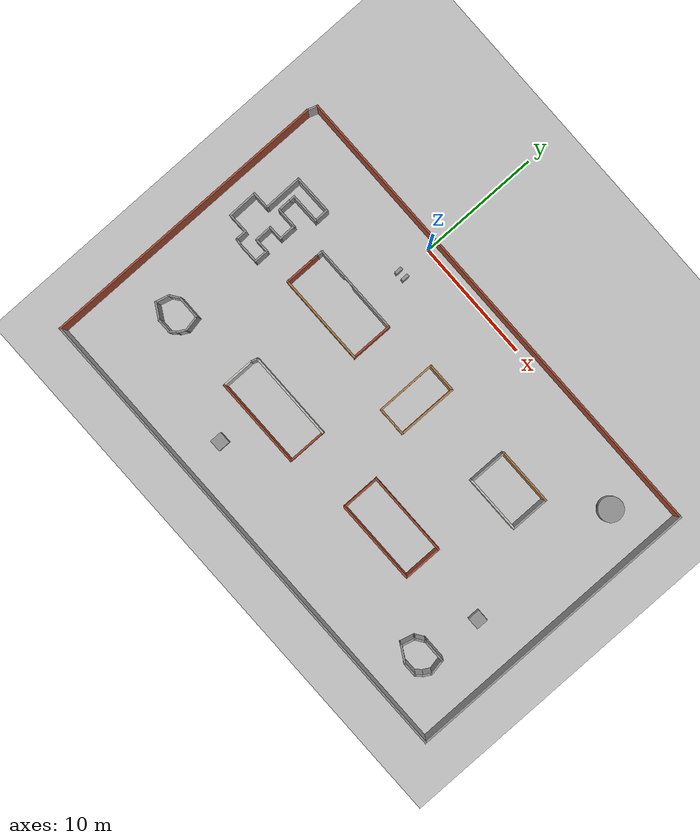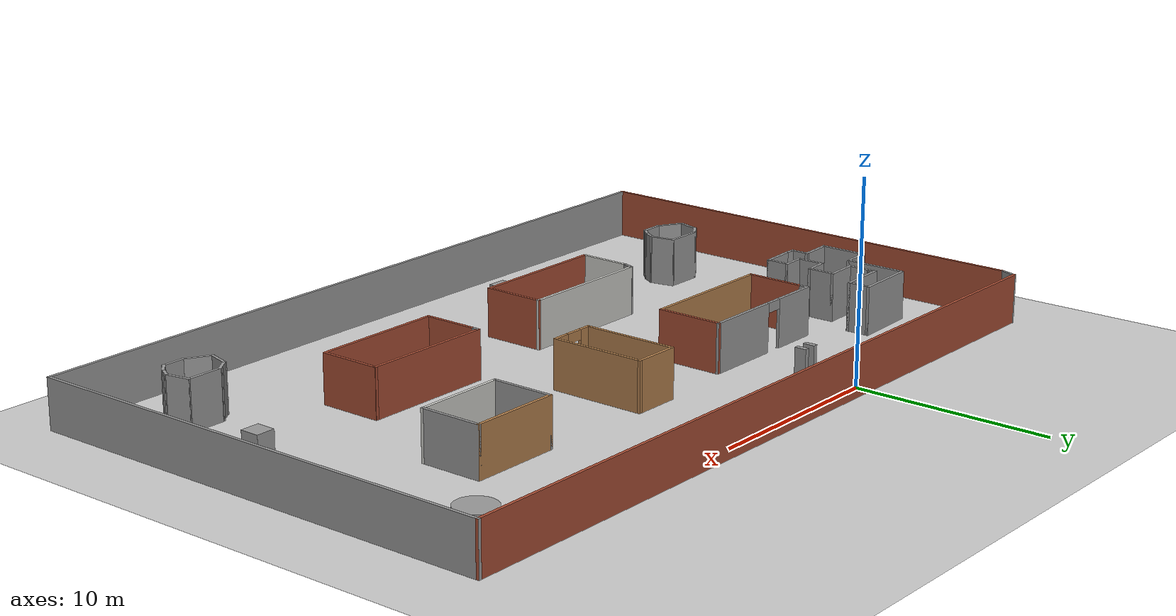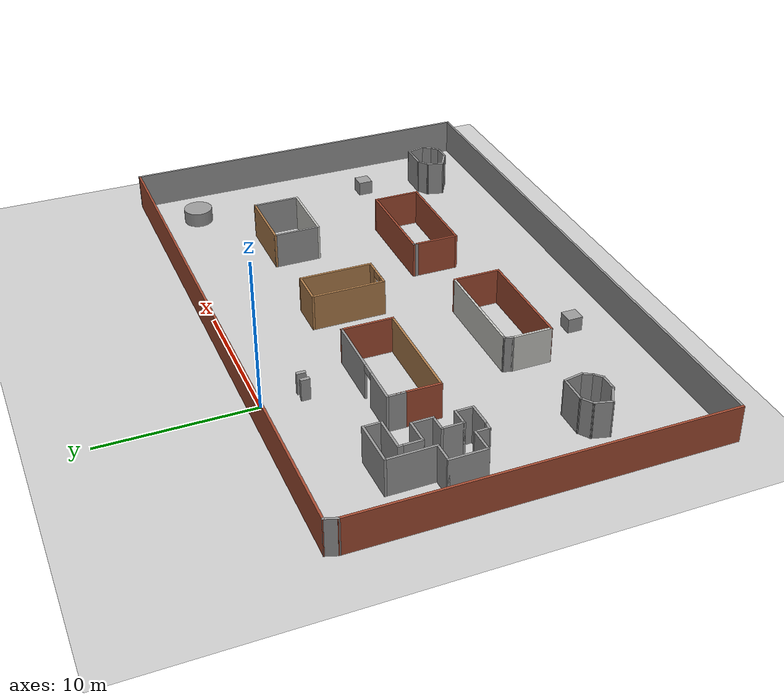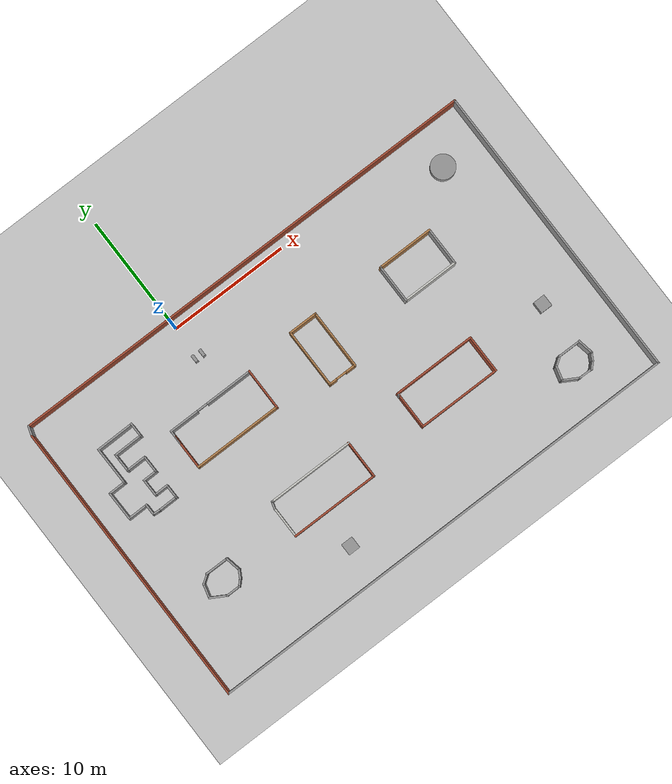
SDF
<sdf version="1.7">
 <world name="default">
  <light name="sun" type="directional">
   <pose>0 0 10 0 -0 0</pose>
   <diffuse>0.8 0.8 0.8 1</diffuse>
   <specular>0.2 0.2 0.2 1</specular>
   <attenuation>
    <range>1000</range>
    <constant>0.9</constant>
    <linear>0.01</linear>
    <quadratic>0.001</quadratic>
   </attenuation>
   <direction>-0.5 0.1 -0.9</direction>
   <spot><inner_angle>0</inner_angle><outer_angle>0</outer_angle><falloff>0</falloff></spot>
  </light>
  <model name="ground_plane">
   <static>1</static>
   <link name="link">
    <collision name="collision">
     <geometry><plane><normal>0 0 1</normal><size>100 100</size></plane></geometry>
     <surface>
      <contact><collide_bitmask>65535</collide_bitmask></contact>
      <friction><ode><mu>100</mu><mu2>50</mu2></ode></friction>
     </surface>
    </collision>
    <visual name="visual">
     <cast_shadows>0</cast_shadows>
     <geometry><plane><normal>0 0 1</normal><size>100 100</size></plane></geometry>
     <material>
      <script><uri>file://media/materials/scripts/gazebo.material</uri><name>Gazebo/Grey</name></script>
     </material>
    </visual>
   </link>
  </model>
  <gravity>0 0 -9.8</gravity>
  <magnetic_field>6e-06 2.3e-05 -4.2e-05</magnetic_field>
  <atmosphere type="adiabatic"/>
  <physics type="ode">
   <max_step_size>0.001</max_step_size>
   <real_time_factor>1</real_time_factor>
   <real_time_update_rate>1000</real_time_update_rate>
  </physics>
  <scene><ambient>0.4 0.4 0.4 1</ambient><background>0.7 0.7 0.7 1</background><shadows>1</shadows></scene>
  <spherical_coordinates>
   <surface_model>EARTH_WGS84</surface_model>
   <latitude_deg>0</latitude_deg>
   <longitude_deg>0</longitude_deg>
   <elevation>0</elevation>
   <heading_deg>0</heading_deg>
  </spherical_coordinates>
  <model name="carto_test.world">
   <pose>6.79408 -11.7235 0 0 -0 0</pose>
   <link name="Wall_0">
    <pose>0.980896 1.21795 0 0 -0 0</pose>
    <visual name="Wall_0_Visual_0">
     <pose>-0.90605 0 1.25 0 -0 0</pose>
     <geometry><box><size>0.687901 0.15 2.5</size></box></geometry>
     <material>
      <script><uri>file://media/materials/scripts/gazebo.material</uri><name>Gazebo/Wood</name></script>
      <ambient>1 1 1 1</ambient>
     </material>
     <meta><layer>0</layer></meta>
    </visual>
    <collision name="Wall_0_Collision_0">
     <geometry><box><size>0.687901 0.15 2.5</size></box></geometry>
     <pose>-0.90605 0 1.25 0 -0 0</pose>
    </collision>
    <visual name="Wall_0_Visual_1">
     <pose>0.79395 0 1.25 0 -0 0</pose>
     <geometry><box><size>0.912099 0.15 2.5</size></box></geometry>
     <material>
      <script><uri>file://media/materials/scripts/gazebo.material</uri><name>Gazebo/Wood</name></script>
      <ambient>1 1 1 1</ambient>
     </material>
     <meta><layer>0</layer></meta>
    </visual>
    <collision name="Wall_0_Collision_1">
     <geometry><box><size>0.912099 0.15 2.5</size></box></geometry>
     <pose>0.79395 0 1.25 0 -0 0</pose>
    </collision>
    <visual name="Wall_0_Visual_2">
     <pose>-0.112099 0 2.25 0 -0 0</pose>
     <geometry><box><size>0.9 0.15 0.5</size></box></geometry>
     <material>
      <script><uri>file://media/materials/scripts/gazebo.material</uri><name>Gazebo/Wood</name></script>
      <ambient>1 1 1 1</ambient>
     </material>
     <meta><layer>0</layer></meta>
    </visual>
    <collision name="Wall_0_Collision_2">
     <geometry><box><size>0.9 0.15 0.5</size></box></geometry>
     <pose>-0.112099 0 2.25 0 -0 0</pose>
    </collision>
   </link>
   <link name="Wall_1">
    <collision name="Wall_1_Collision">
     <geometry><box><size>5 0.15 2.5</size></box></geometry>
     <pose>0 0 1.25 0 -0 0</pose>
    </collision>
    <visual name="Wall_1_Visual">
     <pose>0 0 1.25 0 -0 0</pose>
     <geometry><box><size>5 0.15 2.5</size></box></geometry>
     <material>
      <script><uri>file://media/materials/scripts/gazebo.material</uri><name>Gazebo/Wood</name></script>
      <ambient>1 1 1 1</ambient>
     </material>
     <meta><layer>0</layer></meta>
    </visual>
    <pose>2.1559 3.64295 0 0 -0 1.5708</pose>
   </link>
   <link name="Wall_11">
    <collision name="Wall_11_Collision">
     <geometry><box><size>3.25 0.15 2.5</size></box></geometry>
     <pose>0 0 1.25 0 -0 0</pose>
    </collision>
    <visual name="Wall_11_Visual">
     <pose>0 0 1.25 0 -0 0</pose>
     <geometry><box><size>3.25 0.15 2.5</size></box></geometry>
     <material>
      <script><uri>file://media/materials/scripts/gazebo.material</uri><name>Gazebo/Grey</name></script>
      <ambient>1 1 1 1</ambient>
     </material>
     <meta><layer>0</layer></meta>
    </visual>
    <pose>8.13072 4.30392 0 0 -0 1.5708</pose>
   </link>
   <link name="Wall_12">
    <collision name="Wall_12_Collision">
     <geometry><box><size>4.75 0.15 2.5</size></box></geometry>
     <pose>0 0 1.25 0 -0 0</pose>
    </collision>
    <visual name="Wall_12_Visual">
     <pose>0 0 1.25 0 -0 0</pose>
     <geometry><box><size>4.75 0.15 2.5</size></box></geometry>
     <material>
      <script><uri>file://media/materials/scripts/gazebo.material</uri><name>Gazebo/Wood</name></script>
      <ambient>1 1 1 1</ambient>
     </material>
     <meta><layer>0</layer></meta>
    </visual>
    <pose>10.4307 5.85392 0 0 -0 0</pose>
   </link>
   <link name="Wall_13">
    <collision name="Wall_13_Collision">
     <geometry><box><size>3.25 0.15 2.5</size></box></geometry>
     <pose>0 0 1.25 0 -0 0</pose>
    </collision>
    <visual name="Wall_13_Visual">
     <pose>0 0 1.25 0 -0 0</pose>
     <geometry><box><size>3.25 0.15 2.5</size></box></geometry>
     <material>
      <script><uri>file://media/materials/scripts/gazebo.material</uri><name>Gazebo/Grey</name></script>
      <ambient>1 1 1 1</ambient>
     </material>
     <meta><layer>0</layer></meta>
    </visual>
    <pose>12.7307 4.30392 0 0 -0 -1.5708</pose>
   </link>
   <link name="Wall_14">
    <collision name="Wall_14_Collision">
     <geometry><box><size>4.75 0.15 2.5</size></box></geometry>
     <pose>0 0 1.25 0 -0 0</pose>
    </collision>
    <visual name="Wall_14_Visual">
     <pose>0 0 1.25 0 -0 0</pose>
     <geometry><box><size>4.75 0.15 2.5</size></box></geometry>
     <material>
      <script><uri>file://media/materials/scripts/gazebo.material</uri><name>Gazebo/CeilingTiled</name></script>
      <ambient>1 1 1 1</ambient>
     </material>
     <meta><layer>0</layer></meta>
    </visual>
    <pose>10.4307 2.75392 0 0 -0 3.14159</pose>
   </link>
   <link name="Wall_16">
    <collision name="Wall_16_Collision">
     <geometry><box><size>2.75 0.15 2.5</size></box></geometry>
     <pose>0 0 1.25 0 -0 0</pose>
    </collision>
    <visual name="Wall_16_Visual">
     <pose>0 0 1.25 0 -0 0</pose>
     <geometry><box><size>2.75 0.15 2.5</size></box></geometry>
     <material>
      <script><uri>file://media/materials/scripts/gazebo.material</uri><name>Gazebo/CeilingTiled</name></script>
      <ambient>1 1 1 1</ambient>
     </material>
     <meta><layer>0</layer></meta>
    </visual>
    <pose>-9.1174 -4.89748 0 0 -0 -1.5708</pose>
   </link>
   <link name="Wall_17">
    <collision name="Wall_17_Collision">
     <geometry><box><size>7.5 0.15 2.5</size></box></geometry>
     <pose>0 0 1.25 0 -0 0</pose>
    </collision>
    <visual name="Wall_17_Visual">
     <pose>0 0 1.25 0 -0 0</pose>
     <geometry><box><size>7.5 0.15 2.5</size></box></geometry>
     <material>
      <script><uri>file://media/materials/scripts/gazebo.material</uri><name>Gazebo/Bricks</name></script>
      <ambient>1 1 1 1</ambient>
     </material>
     <meta><layer>0</layer></meta>
    </visual>
    <pose>-5.4424 -6.19749 0 0 -0 0</pose>
   </link>
   <link name="Wall_18">
    <collision name="Wall_18_Collision">
     <geometry><box><size>3.25 0.15 2.5</size></box></geometry>
     <pose>0 0 1.25 0 -0 0</pose>
    </collision>
    <visual name="Wall_18_Visual">
     <pose>0 0 1.25 0 -0 0</pose>
     <geometry><box><size>3.25 0.15 2.5</size></box></geometry>
     <material>
      <script><uri>file://media/materials/scripts/gazebo.material</uri><name>Gazebo/Bricks</name></script>
      <ambient>1 1 1 1</ambient>
     </material>
     <meta><layer>0</layer></meta>
    </visual>
    <pose>-1.7674 -4.64748 0 0 -0 1.5708</pose>
   </link>
   <link name="Wall_19">
    <collision name="Wall_19_Collision">
     <geometry><box><size>7.25 0.15 2.5</size></box></geometry>
     <pose>0 0 1.25 0 -0 0</pose>
    </collision>
    <visual name="Wall_19_Visual">
     <pose>0 0 1.25 0 -0 0</pose>
     <geometry><box><size>7.25 0.15 2.5</size></box></geometry>
     <material>
      <script><uri>file://media/materials/scripts/gazebo.material</uri><name>Gazebo/CeilingTiled</name></script>
      <ambient>1 1 1 1</ambient>
     </material>
     <meta><layer>0</layer></meta>
    </visual>
    <pose>-5.3174 -3.09749 0 0 -0 3.14159</pose>
   </link>
   <link name="Wall_2">
    <collision name="Wall_2_Collision">
     <geometry><box><size>2.5 0.15 2.5</size></box></geometry>
     <pose>0 0 1.25 0 -0 0</pose>
    </collision>
    <visual name="Wall_2_Visual">
     <pose>0 0 1.25 0 -0 0</pose>
     <geometry><box><size>2.5 0.15 2.5</size></box></geometry>
     <material>
      <script><uri>file://media/materials/scripts/gazebo.material</uri><name>Gazebo/Wood</name></script>
      <ambient>1 1 1 1</ambient>
     </material>
     <meta><layer>0</layer></meta>
    </visual>
    <pose>0.980896 6.06795 0 0 -0 3.14159</pose>
   </link>
   <link name="Wall_20">
    <collision name="Wall_20_Collision">
     <geometry><box><size>0.25 0.15 2.5</size></box></geometry>
     <pose>0 0 1.25 0 -0 0</pose>
    </collision>
    <visual name="Wall_20_Visual">
     <pose>0 0 1.25 0 -0 0</pose>
     <geometry><box><size>0.25 0.15 2.5</size></box></geometry>
     <material>
      <script><uri>file://media/materials/scripts/gazebo.material</uri><name>Gazebo/Grey</name></script>
      <ambient>1 1 1 1</ambient>
     </material>
     <meta><layer>0</layer></meta>
    </visual>
    <pose>-8.9174 -3.09749 0 0 -0 3.14159</pose>
   </link>
   <link name="Wall_21">
    <collision name="Wall_21_Collision">
     <geometry><box><size>0.15 0.15 2.5</size></box></geometry>
     <pose>0 0 1.25 0 -0 0</pose>
    </collision>
    <visual name="Wall_21_Visual">
     <pose>0 0 1.25 0 -0 0</pose>
     <geometry><box><size>0.15 0.15 2.5</size></box></geometry>
     <material>
      <script><uri>file://media/materials/scripts/gazebo.material</uri><name>Gazebo/Grey</name></script>
      <ambient>1 1 1 1</ambient>
     </material>
     <meta><layer>0</layer></meta>
    </visual>
    <pose>-8.9674 -3.09749 0 0 -0 0</pose>
   </link>
   <link name="Wall_22">
    <collision name="Wall_22_Collision">
     <geometry><box><size>0.672015 0.15 2.5</size></box></geometry>
     <pose>0 0 1.25 0 -0 0</pose>
    </collision>
    <visual name="Wall_22_Visual">
     <pose>0 0 1.25 0 -0 0</pose>
     <geometry><box><size>0.672015 0.15 2.5</size></box></geometry>
     <material>
      <script><uri>file://media/materials/scripts/gazebo.material</uri><name>Gazebo/Grey</name></script>
      <ambient>1 1 1 1</ambient>
     </material>
     <meta><layer>0</layer></meta>
    </visual>
    <pose>-9.0424 -3.34749 0 0 -0 -1.86225</pose>
   </link>
   <link name="Wall_24">
    <collision name="Wall_24_Collision">
     <geometry><box><size>3 0.15 2.5</size></box></geometry>
     <pose>0 0 1.25 0 -0 0</pose>
    </collision>
    <visual name="Wall_24_Visual">
     <pose>0 0 1.25 0 -0 0</pose>
     <geometry><box><size>3 0.15 2.5</size></box></geometry>
     <material>
      <script><uri>file://media/materials/scripts/gazebo.material</uri><name>Gazebo/Bricks</name></script>
      <ambient>1 1 1 1</ambient>
     </material>
     <meta><layer>0</layer></meta>
    </visual>
    <pose>3.3842 -4.07922 0 0 -0 -1.5708</pose>
   </link>
   <link name="Wall_25">
    <collision name="Wall_25_Collision">
     <geometry><box><size>7 0.15 2.5</size></box></geometry>
     <pose>0 0 1.25 0 -0 0</pose>
    </collision>
    <visual name="Wall_25_Visual">
     <pose>0 0 1.25 0 -0 0</pose>
     <geometry><box><size>7 0.15 2.5</size></box></geometry>
     <material>
      <script><uri>file://media/materials/scripts/gazebo.material</uri><name>Gazebo/Bricks</name></script>
      <ambient>1 1 1 1</ambient>
     </material>
     <meta><layer>0</layer></meta>
    </visual>
    <pose>6.80919 -5.50422 0 0 -0 0</pose>
   </link>
   <link name="Wall_26">
    <collision name="Wall_26_Collision">
     <geometry><box><size>3.25 0.15 2.5</size></box></geometry>
     <pose>0 0 1.25 0 -0 0</pose>
    </collision>
    <visual name="Wall_26_Visual">
     <pose>0 0 1.25 0 -0 0</pose>
     <geometry><box><size>3.25 0.15 2.5</size></box></geometry>
     <material>
      <script><uri>file://media/materials/scripts/gazebo.material</uri><name>Gazebo/Bricks</name></script>
      <ambient>1 1 1 1</ambient>
     </material>
     <meta><layer>0</layer></meta>
    </visual>
    <pose>10.2342 -3.95422 0 0 -0 1.5708</pose>
   </link>
   <link name="Wall_27">
    <collision name="Wall_27_Collision">
     <geometry><box><size>7 0.15 2.5</size></box></geometry>
     <pose>0 0 1.25 0 -0 0</pose>
    </collision>
    <visual name="Wall_27_Visual">
     <pose>0 0 1.25 0 -0 0</pose>
     <geometry><box><size>7 0.15 2.5</size></box></geometry>
     <material>
      <script><uri>file://media/materials/scripts/gazebo.material</uri><name>Gazebo/Bricks</name></script>
      <ambient>1 1 1 1</ambient>
     </material>
     <meta><layer>0</layer></meta>
    </visual>
    <pose>6.80919 -2.40422 0 0 -0 3.14159</pose>
   </link>
   <link name="Wall_28">
    <collision name="Wall_28_Collision">
     <geometry><box><size>0.4 0.15 2.5</size></box></geometry>
     <pose>0 0 1.25 0 -0 0</pose>
    </collision>
    <visual name="Wall_28_Visual">
     <pose>0 0 1.25 0 -0 0</pose>
     <geometry><box><size>0.4 0.15 2.5</size></box></geometry>
     <material>
      <script><uri>file://media/materials/scripts/gazebo.material</uri><name>Gazebo/Grey</name></script>
      <ambient>1 1 1 1</ambient>
     </material>
     <meta><layer>0</layer></meta>
    </visual>
    <pose>3.3842 -2.52922 0 0 -0 -1.5708</pose>
   </link>
   <link name="Wall_3">
    <collision name="Wall_3_Collision">
     <geometry><box><size>5 0.15 2.5</size></box></geometry>
     <pose>0 0 1.25 0 -0 0</pose>
    </collision>
    <visual name="Wall_3_Visual">
     <pose>0 0 1.25 0 -0 0</pose>
     <geometry><box><size>5 0.15 2.5</size></box></geometry>
     <material>
      <script><uri>file://media/materials/scripts/gazebo.material</uri><name>Gazebo/Wood</name></script>
      <ambient>1 1 1 1</ambient>
     </material>
     <meta><layer>0</layer></meta>
    </visual>
    <pose>-0.194103 3.64295 0 0 -0 -1.5708</pose>
   </link>
   <link name="Wall_30">
    <collision name="Wall_30_Collision">
     <geometry><box><size>24.25 0.15 2.5</size></box></geometry>
     <pose>0 0 1.25 0 -0 0</pose>
    </collision>
    <visual name="Wall_30_Visual">
     <pose>0 0 1.25 0 -0 0</pose>
     <geometry><box><size>24.25 0.15 2.5</size></box></geometry>
     <material>
      <script><uri>file://media/materials/scripts/gazebo.material</uri><name>Gazebo/Bricks</name></script>
      <ambient>1 1 1 1</ambient>
     </material>
     <meta><layer>0</layer></meta>
    </visual>
    <pose>-20.1651 -0.384934 0 0 -0 -1.5708</pose>
   </link>
   <link name="Wall_31">
    <collision name="Wall_31_Collision">
     <geometry><box><size>40.5 0.15 2.5</size></box></geometry>
     <pose>0 0 1.25 0 -0 0</pose>
    </collision>
    <visual name="Wall_31_Visual">
     <pose>0 0 1.25 0 -0 0</pose>
     <geometry><box><size>40.5 0.15 2.5</size></box></geometry>
     <material>
      <script><uri>file://media/materials/scripts/gazebo.material</uri><name>Gazebo/Grey</name></script>
      <ambient>1 1 1 1</ambient>
     </material>
     <meta><layer>0</layer></meta>
    </visual>
    <pose>0.009934 -12.4349 0 0 -0 0</pose>
   </link>
   <link name="Wall_32">
    <collision name="Wall_32_Collision">
     <geometry><box><size>25 0.15 2.5</size></box></geometry>
     <pose>0 0 1.25 0 -0 0</pose>
    </collision>
    <visual name="Wall_32_Visual">
     <pose>0 0 1.25 0 -0 0</pose>
     <geometry><box><size>25 0.15 2.5</size></box></geometry>
     <material>
      <script><uri>file://media/materials/scripts/gazebo.material</uri><name>Gazebo/Grey</name></script>
      <ambient>1 1 1 1</ambient>
     </material>
     <meta><layer>0</layer></meta>
    </visual>
    <pose>20.1849 -0.009934 0 0 -0 1.5708</pose>
   </link>
   <link name="Wall_33">
    <collision name="Wall_33_Collision">
     <geometry><box><size>40.25 0.15 2.5</size></box></geometry>
     <pose>0 0 1.25 0 -0 0</pose>
    </collision>
    <visual name="Wall_33_Visual">
     <pose>0 0 1.25 0 -0 0</pose>
     <geometry><box><size>40.25 0.15 2.5</size></box></geometry>
     <material>
      <script><uri>file://media/materials/scripts/gazebo.material</uri><name>Gazebo/Bricks</name></script>
      <ambient>1 1 1 1</ambient>
     </material>
     <meta><layer>0</layer></meta>
    </visual>
    <pose>0.134934 12.4151 0 0 -0 3.14159</pose>
   </link>
   <link name="Wall_37">
    <collision name="Wall_37_Collision">
     <geometry><box><size>0.940569 0.15 2.5</size></box></geometry>
     <pose>0 0 1.25 0 -0 0</pose>
    </collision>
    <visual name="Wall_37_Visual">
     <pose>0 0 1.25 0 -0 0</pose>
     <geometry><box><size>0.940569 0.15 2.5</size></box></geometry>
     <material>
      <script><uri>file://media/materials/scripts/gazebo.material</uri><name>Gazebo/Grey</name></script>
      <ambient>1 1 1 1</ambient>
     </material>
     <meta><layer>0</layer></meta>
    </visual>
    <pose>-20.0401 12.0401 0 0 -0 1.24905</pose>
   </link>
   <link name="Wall_5">
    <collision name="Wall_5_Collision">
     <geometry><box><size>3 0.15 2.5</size></box></geometry>
     <pose>0 0 1.25 0 -0 0</pose>
    </collision>
    <visual name="Wall_5_Visual">
     <pose>0 0 1.25 0 -0 0</pose>
     <geometry><box><size>3 0.15 2.5</size></box></geometry>
     <material>
      <script><uri>file://media/materials/scripts/gazebo.material</uri><name>Gazebo/Bricks</name></script>
      <ambient>1 1 1 1</ambient>
     </material>
     <meta><layer>0</layer></meta>
    </visual>
    <pose>-11.7266 3.72123 0 0 -0 -1.5708</pose>
   </link>
   <link name="Wall_6">
    <collision name="Wall_6_Collision">
     <geometry><box><size>7.5 0.15 2.5</size></box></geometry>
     <pose>0 0 1.25 0 -0 0</pose>
    </collision>
    <visual name="Wall_6_Visual">
     <pose>0 0 1.25 0 -0 0</pose>
     <geometry><box><size>7.5 0.15 2.5</size></box></geometry>
     <material>
      <script><uri>file://media/materials/scripts/gazebo.material</uri><name>Gazebo/Wood</name></script>
      <ambient>1 1 1 1</ambient>
     </material>
     <meta><layer>0</layer></meta>
    </visual>
    <pose>-8.0516 2.29623 0 0 -0 0</pose>
   </link>
   <link name="Wall_7">
    <collision name="Wall_7_Collision">
     <geometry><box><size>3.5 0.15 2.5</size></box></geometry>
     <pose>0 0 1.25 0 -0 0</pose>
    </collision>
    <visual name="Wall_7_Visual">
     <pose>0 0 1.25 0 -0 0</pose>
     <geometry><box><size>3.5 0.15 2.5</size></box></geometry>
     <material>
      <script><uri>file://media/materials/scripts/gazebo.material</uri><name>Gazebo/Bricks</name></script>
      <ambient>1 1 1 1</ambient>
     </material>
     <meta><layer>0</layer></meta>
    </visual>
    <pose>-4.3766 3.97123 0 0 -0 1.5708</pose>
   </link>
   <link name="Wall_8">
    <pose>-8.0516 5.64623 0 0 -0 3.14159</pose>
    <visual name="Wall_8_Visual_0">
     <pose>-1.72345 0 1.25 0 -0 0</pose>
     <geometry><box><size>4.05309 0.15 2.5</size></box></geometry>
     <material>
      <script><uri>file://media/materials/scripts/gazebo.material</uri><name>Gazebo/Grey</name></script>
      <ambient>1 1 1 1</ambient>
     </material>
     <meta><layer>0</layer></meta>
    </visual>
    <collision name="Wall_8_Collision_0">
     <geometry><box><size>4.05309 0.15 2.5</size></box></geometry>
     <pose>-1.72345 0 1.25 0 -0 0</pose>
    </collision>
    <visual name="Wall_8_Visual_1">
     <pose>2.47655 0 1.25 0 -0 0</pose>
     <geometry><box><size>2.54691 0.15 2.5</size></box></geometry>
     <material>
      <script><uri>file://media/materials/scripts/gazebo.material</uri><name>Gazebo/Grey</name></script>
      <ambient>1 1 1 1</ambient>
     </material>
     <meta><layer>0</layer></meta>
    </visual>
    <collision name="Wall_8_Collision_1">
     <geometry><box><size>2.54691 0.15 2.5</size></box></geometry>
     <pose>2.47655 0 1.25 0 -0 0</pose>
    </collision>
    <visual name="Wall_8_Visual_2">
     <pose>0.753095 0 2.25 0 -0 0</pose>
     <geometry><box><size>0.9 0.15 0.5</size></box></geometry>
     <material>
      <script><uri>file://media/materials/scripts/gazebo.material</uri><name>Gazebo/Grey</name></script>
      <ambient>1 1 1 1</ambient>
     </material>
     <meta><layer>0</layer></meta>
    </visual>
    <collision name="Wall_8_Collision_2">
     <geometry><box><size>0.9 0.15 0.5</size></box></geometry>
     <pose>0.753095 0 2.25 0 -0 0</pose>
    </collision>
   </link>
   <link name="Wall_9">
    <collision name="Wall_9_Collision">
     <geometry><box><size>1.25 0.15 2.5</size></box></geometry>
     <pose>0 0 1.25 0 -0 0</pose>
    </collision>
    <visual name="Wall_9_Visual">
     <pose>0 0 1.25 0 -0 0</pose>
     <geometry><box><size>1.25 0.15 2.5</size></box></geometry>
     <material>
      <script><uri>file://media/materials/scripts/gazebo.material</uri><name>Gazebo/Grey</name></script>
      <ambient>1 1 1 1</ambient>
     </material>
     <meta><layer>0</layer></meta>
    </visual>
    <pose>-11.7266 5.09623 0 0 -0 -1.5708</pose>
   </link>
   <static>1</static>
  </model>
  <model name="unit_cylinder">
   <link name="link">
    <inertial>
     <mass>1</mass>
     <inertia><ixx>0.145833</ixx><ixy>0</ixy><ixz>0</ixz><iyy>0.145833</iyy><iyz>0</iyz><izz>0.125</izz></inertia>
    </inertial>
    <visual name="visual">
     <geometry><cylinder><radius>1.0</radius><length>1</length></cylinder></geometry>
     <material>
      <script><name>Gazebo/Grey</name><uri>file://media/materials/scripts/gazebo.material</uri></script>
      <shader type="pixel"><normal_map>__default__</normal_map></shader>
      <ambient>0.3 0.3 0.3 1</ambient>
      <diffuse>0.7 0.7 0.7 1</diffuse>
      <specular>0.01 0.01 0.01 1</specular>
      <emissive>0 0 0 1</emissive>
     </material>
    </visual>
    <collision name="collision">
     <geometry><cylinder><radius>1</radius><length>1</length></cylinder></geometry>
     <surface>
      <friction>
       <ode><mu>1</mu><mu2>1</mu2><fdir1>0 0 0</fdir1><slip1>0</slip1><slip2>0</slip2></ode>
       <torsional>
        <coefficient>1</coefficient>
        <patch_radius>0</patch_radius>
        <surface_radius>0</surface_radius>
        <use_patch_radius>1</use_patch_radius>
        <ode><slip>0</slip></ode>
       </torsional>
      </friction>
      <bounce><restitution_coefficient>0</restitution_coefficient><threshold>1e+06</threshold></bounce>
      <contact>
       <collide_without_contact>0</collide_without_contact>
       <collide_without_contact_bitmask>1</collide_without_contact_bitmask>
       <collide_bitmask>1</collide_bitmask>
       <ode>
        <soft_cfm>0</soft_cfm>
        <soft_erp>0.2</soft_erp>
        <kp>1e+13</kp>
        <kd>1</kd>
        <max_vel>0.01</max_vel>
        <min_depth>0</min_depth>
       </ode>
       <bullet>
        <split_impulse>1</split_impulse>
        <split_impulse_penetration_threshold>-0.01</split_impulse_penetration_threshold>
        <soft_cfm>0</soft_cfm>
        <soft_erp>0.2</soft_erp>
        <kp>1e+13</kp>
        <kd>1</kd>
       </bullet>
      </contact>
     </surface>
    </collision>
   </link>
   <link name="link_1">
    <inertial>
     <mass>1</mass>
     <inertia>
      <ixx>0.166667</ixx>
      <ixy>0</ixy>
      <ixz>0</ixz>
      <iyy>0.166667</iyy>
      <iyz>0</iyz>
      <izz>0.166667</izz>
     </inertia>
    </inertial>
    <pose>-0.400023 -12.7768 -0 0 -0 0</pose>
    <visual name="visual">
     <geometry><box><size>1 1 1</size></box></geometry>
     <material>
      <lighting>1</lighting>
      <script><uri>file://media/materials/scripts/gazebo.material</uri><name>Gazebo/Grey</name></script>
      <shader type="pixel"><normal_map>__default__</normal_map></shader>
      <ambient>0.3 0.3 0.3 1</ambient>
      <diffuse>0.7 0.7 0.7 1</diffuse>
      <specular>0.01 0.01 0.01 1</specular>
      <emissive>0 0 0 1</emissive>
     </material>
    </visual>
    <collision name="collision">
     <geometry><box><size>1 1 1</size></box></geometry>
     <surface>
      <friction>
       <ode><mu>1</mu><mu2>1</mu2><fdir1>0 0 0</fdir1><slip1>0</slip1><slip2>0</slip2></ode>
       <torsional>
        <coefficient>1</coefficient>
        <patch_radius>0</patch_radius>
        <surface_radius>0</surface_radius>
        <use_patch_radius>1</use_patch_radius>
        <ode><slip>0</slip></ode>
       </torsional>
      </friction>
      <bounce><restitution_coefficient>0</restitution_coefficient><threshold>1e+06</threshold></bounce>
      <contact>
       <collide_without_contact>0</collide_without_contact>
       <collide_without_contact_bitmask>1</collide_without_contact_bitmask>
       <collide_bitmask>1</collide_bitmask>
       <ode>
        <soft_cfm>0</soft_cfm>
        <soft_erp>0.2</soft_erp>
        <kp>1e+13</kp>
        <kd>1</kd>
        <max_vel>0.01</max_vel>
        <min_depth>0</min_depth>
       </ode>
       <bullet>
        <split_impulse>1</split_impulse>
        <split_impulse_penetration_threshold>-0.01</split_impulse_penetration_threshold>
        <soft_cfm>0</soft_cfm>
        <soft_erp>0.2</soft_erp>
        <kp>1e+13</kp>
        <kd>1</kd>
       </bullet>
      </contact>
     </surface>
    </collision>
   </link>
   <static>0</static>
   <pose>23.3885 -2.61658 0.5 0 -0 2.9e-05</pose>
  </model>
  <model name="unregular_wall">
   <pose>-8.69678 -16.3277 0 0 -0 0</pose>
   <link name="Wall_0">
    <collision name="Wall_0_Collision">
     <geometry><box><size>1.99003 0.15 2.5</size></box></geometry>
     <pose>0 0 1.25 0 -0 0</pose>
    </collision>
    <visual name="Wall_0_Visual">
     <pose>0 0 1.25 0 -0 0</pose>
     <geometry><box><size>1.99003 0.15 2.5</size></box></geometry>
     <material>
      <script><uri>file://media/materials/scripts/gazebo.material</uri><name>Gazebo/Grey</name></script>
      <ambient>1 1 1 1</ambient>
     </material>
     <meta><layer>0</layer></meta>
    </visual>
    <pose>0.359239 0.205461 0 0 -0 -0.005435</pose>
   </link>
   <link name="Wall_1">
    <collision name="Wall_1_Collision">
     <geometry><box><size>1.37286 0.15 2.5</size></box></geometry>
     <pose>0 0 1.25 0 -0 0</pose>
    </collision>
    <visual name="Wall_1_Visual">
     <pose>0 0 1.25 0 -0 0</pose>
     <geometry><box><size>1.37286 0.15 2.5</size></box></geometry>
     <material>
      <script><uri>file://media/materials/scripts/gazebo.material</uri><name>Gazebo/Grey</name></script>
      <ambient>1 1 1 1</ambient>
     </material>
     <meta><layer>0</layer></meta>
    </visual>
    <pose>1.40424 -0.400057 0 0 -0 -1.38159</pose>
   </link>
   <link name="Wall_2">
    <collision name="Wall_2_Collision">
     <geometry><box><size>0.814319 0.15 2.5</size></box></geometry>
     <pose>0 0 1.25 0 -0 0</pose>
    </collision>
    <visual name="Wall_2_Visual">
     <pose>0 0 1.25 0 -0 0</pose>
     <geometry><box><size>0.814319 0.15 2.5</size></box></geometry>
     <material>
      <script><uri>file://media/materials/scripts/gazebo.material</uri><name>Gazebo/Grey</name></script>
      <ambient>1 1 1 1</ambient>
     </material>
     <meta><layer>0</layer></meta>
    </visual>
    <pose>1.34688 -1.29035 0 0 -0 -2.08149</pose>
   </link>
   <link name="Wall_3">
    <collision name="Wall_3_Collision">
     <geometry><box><size>0.75 0.15 2.5</size></box></geometry>
     <pose>0 0 1.25 0 -0 0</pose>
    </collision>
    <visual name="Wall_3_Visual">
     <pose>0 0 1.25 0 -0 0</pose>
     <geometry><box><size>0.75 0.15 2.5</size></box></geometry>
     <material>
      <script><uri>file://media/materials/scripts/gazebo.material</uri><name>Gazebo/Grey</name></script>
      <ambient>1 1 1 1</ambient>
     </material>
     <meta><layer>0</layer></meta>
    </visual>
    <pose>0.972394 -1.79226 0 0 -0 -2.35619</pose>
   </link>
   <link name="Wall_4">
    <collision name="Wall_4_Collision">
     <geometry><box><size>1.25 0.15 2.5</size></box></geometry>
     <pose>0 0 1.25 0 -0 0</pose>
    </collision>
    <visual name="Wall_4_Visual">
     <pose>0 0 1.25 0 -0 0</pose>
     <geometry><box><size>1.25 0.15 2.5</size></box></geometry>
     <material>
      <script><uri>file://media/materials/scripts/gazebo.material</uri><name>Gazebo/Grey</name></script>
      <ambient>1 1 1 1</ambient>
     </material>
     <meta><layer>0</layer></meta>
    </visual>
    <pose>0.210262 -2.0044 0 0 -0 3.14159</pose>
   </link>
   <link name="Wall_5">
    <collision name="Wall_5_Collision">
     <geometry><box><size>1.5 0.15 2.5</size></box></geometry>
     <pose>0 0 1.25 0 -0 0</pose>
    </collision>
    <visual name="Wall_5_Visual">
     <pose>0 0 1.25 0 -0 0</pose>
     <geometry><box><size>1.5 0.15 2.5</size></box></geometry>
     <material>
      <script><uri>file://media/materials/scripts/gazebo.material</uri><name>Gazebo/Grey</name></script>
      <ambient>1 1 1 1</ambient>
     </material>
     <meta><layer>0</layer></meta>
    </visual>
    <pose>-0.924305 -1.6669 0 0 -0 2.61799</pose>
   </link>
   <link name="Wall_6">
    <collision name="Wall_6_Collision">
     <geometry><box><size>1.25 0.15 2.5</size></box></geometry>
     <pose>0 0 1.25 0 -0 0</pose>
    </collision>
    <visual name="Wall_6_Visual">
     <pose>0 0 1.25 0 -0 0</pose>
     <geometry><box><size>1.25 0.15 2.5</size></box></geometry>
     <material>
      <script><uri>file://media/materials/scripts/gazebo.material</uri><name>Gazebo/Grey</name></script>
      <ambient>1 1 1 1</ambient>
     </material>
     <meta><layer>0</layer></meta>
    </visual>
    <pose>-1.36652 -0.798136 0 0 -0 1.309</pose>
   </link>
   <link name="Wall_7">
    <collision name="Wall_7_Collision">
     <geometry><box><size>0.969686 0.15 2.5</size></box></geometry>
     <pose>0 0 1.25 0 -0 0</pose>
    </collision>
    <visual name="Wall_7_Visual">
     <pose>0 0 1.25 0 -0 0</pose>
     <geometry><box><size>0.969686 0.15 2.5</size></box></geometry>
     <material>
      <script><uri>file://media/materials/scripts/gazebo.material</uri><name>Gazebo/Grey</name></script>
      <ambient>1 1 1 1</ambient>
     </material>
     <meta><layer>0</layer></meta>
    </visual>
    <pose>-0.887466 -0.033208 0 0 -0 0.606679</pose>
   </link>
   <static>1</static>
  </model>
  <model name="mountan_like">
   <pose>-9.16752 -7.04341 -1e-06 0.014915 -0.000101 1.5834</pose>
   <link name="Wall_0">
    <collision name="Wall_0_Collision">
     <geometry><box><size>1.75 0.15 2.5</size></box></geometry>
     <pose>0 0 1.25 0 -0 0</pose>
    </collision>
    <visual name="Wall_0_Visual">
     <pose>0 0 1.25 0 -0 0</pose>
     <geometry><box><size>1.75 0.15 2.5</size></box></geometry>
     <material>
      <script><uri>file://media/materials/scripts/gazebo.material</uri><name>Gazebo/Grey</name></script>
      <ambient>1 1 1 1</ambient>
     </material>
     <meta><layer>0</layer></meta>
    </visual>
    <pose>-3.17145 -0.675 0 0 -0 -1.5708</pose>
   </link>
   <link name="Wall_1">
    <collision name="Wall_1_Collision">
     <geometry><box><size>1.25 0.15 2.5</size></box></geometry>
     <pose>0 0 1.25 0 -0 0</pose>
    </collision>
    <visual name="Wall_1_Visual">
     <pose>0 0 1.25 0 -0 0</pose>
     <geometry><box><size>1.25 0.15 2.5</size></box></geometry>
     <material>
      <script><uri>file://media/materials/scripts/gazebo.material</uri><name>Gazebo/Grey</name></script>
      <ambient>1 1 1 1</ambient>
     </material>
     <meta><layer>0</layer></meta>
    </visual>
    <pose>-2.62146 -1.475 0 0 -0 0</pose>
   </link>
   <link name="Wall_10">
    <collision name="Wall_10_Collision">
     <geometry><box><size>1.25 0.15 2.5</size></box></geometry>
     <pose>0 0 1.25 0 -0 0</pose>
    </collision>
    <visual name="Wall_10_Visual">
     <pose>0 0 1.25 0 -0 0</pose>
     <geometry><box><size>1.25 0.15 2.5</size></box></geometry>
     <material>
      <script><uri>file://media/materials/scripts/gazebo.material</uri><name>Gazebo/Grey</name></script>
      <ambient>1 1 1 1</ambient>
     </material>
     <meta><layer>0</layer></meta>
    </visual>
    <pose>2.62854 -2.225 0 0 -0 0</pose>
   </link>
   <link name="Wall_11">
    <collision name="Wall_11_Collision">
     <geometry><box><size>3.25 0.15 2.5</size></box></geometry>
     <pose>0 0 1.25 0 -0 0</pose>
    </collision>
    <visual name="Wall_11_Visual">
     <pose>0 0 1.25 0 -0 0</pose>
     <geometry><box><size>3.25 0.15 2.5</size></box></geometry>
     <material>
      <script><uri>file://media/materials/scripts/gazebo.material</uri><name>Gazebo/Grey</name></script>
      <ambient>1 1 1 1</ambient>
     </material>
     <meta><layer>0</layer></meta>
    </visual>
    <pose>3.17855 -0.675 0 0 -0 1.5708</pose>
   </link>
   <link name="Wall_12">
    <collision name="Wall_12_Collision">
     <geometry><box><size>3.25 0.15 2.5</size></box></geometry>
     <pose>0 0 1.25 0 -0 0</pose>
    </collision>
    <visual name="Wall_12_Visual">
     <pose>0 0 1.25 0 -0 0</pose>
     <geometry><box><size>3.25 0.15 2.5</size></box></geometry>
     <material>
      <script><uri>file://media/materials/scripts/gazebo.material</uri><name>Gazebo/Grey</name></script>
      <ambient>1 1 1 1</ambient>
     </material>
     <meta><layer>0</layer></meta>
    </visual>
    <pose>1.62854 0.875 0 0 -0 3.14159</pose>
   </link>
   <link name="Wall_15">
    <collision name="Wall_15_Collision">
     <geometry><box><size>1.5 0.15 2.5</size></box></geometry>
     <pose>0 0 1.25 0 -0 0</pose>
    </collision>
    <visual name="Wall_15_Visual">
     <pose>0 0 1.25 0 -0 0</pose>
     <geometry><box><size>1.5 0.15 2.5</size></box></geometry>
     <material>
      <script><uri>file://media/materials/scripts/gazebo.material</uri><name>Gazebo/Grey</name></script>
      <ambient>1 1 1 1</ambient>
     </material>
     <meta><layer>0</layer></meta>
    </visual>
    <pose>0.078545 1.55 0 0 -0 1.5708</pose>
   </link>
   <link name="Wall_16">
    <collision name="Wall_16_Collision">
     <geometry><box><size>2.5 0.15 2.5</size></box></geometry>
     <pose>0 0 1.25 0 -0 0</pose>
    </collision>
    <visual name="Wall_16_Visual">
     <pose>0 0 1.25 0 -0 0</pose>
     <geometry><box><size>2.5 0.15 2.5</size></box></geometry>
     <material>
      <script><uri>file://media/materials/scripts/gazebo.material</uri><name>Gazebo/Grey</name></script>
      <ambient>1 1 1 1</ambient>
     </material>
     <meta><layer>0</layer></meta>
    </visual>
    <pose>-1.09645 2.225 0 0 -0 3.14159</pose>
   </link>
   <link name="Wall_17">
    <collision name="Wall_17_Collision">
     <geometry><box><size>1.75 0.15 2.5</size></box></geometry>
     <pose>0 0 1.25 0 -0 0</pose>
    </collision>
    <visual name="Wall_17_Visual">
     <pose>0 0 1.25 0 -0 0</pose>
     <geometry><box><size>1.75 0.15 2.5</size></box></geometry>
     <material>
      <script><uri>file://media/materials/scripts/gazebo.material</uri><name>Gazebo/Grey</name></script>
      <ambient>1 1 1 1</ambient>
     </material>
     <meta><layer>0</layer></meta>
    </visual>
    <pose>-2.27146 1.425 0 0 -0 -1.5708</pose>
   </link>
   <link name="Wall_18">
    <collision name="Wall_18_Collision">
     <geometry><box><size>1 0.15 2.5</size></box></geometry>
     <pose>0 0 1.25 0 -0 0</pose>
    </collision>
    <visual name="Wall_18_Visual">
     <pose>0 0 1.25 0 -0 0</pose>
     <geometry><box><size>1 0.15 2.5</size></box></geometry>
     <material>
      <script><uri>file://media/materials/scripts/gazebo.material</uri><name>Gazebo/Grey</name></script>
      <ambient>1 1 1 1</ambient>
     </material>
     <meta><layer>0</layer></meta>
    </visual>
    <pose>-2.69645 0.625 0 0 -0 3.14159</pose>
   </link>
   <link name="Wall_2">
    <collision name="Wall_2_Collision">
     <geometry><box><size>1.25 0.15 2.5</size></box></geometry>
     <pose>0 0 1.25 0 -0 0</pose>
    </collision>
    <visual name="Wall_2_Visual">
     <pose>0 0 1.25 0 -0 0</pose>
     <geometry><box><size>1.25 0.15 2.5</size></box></geometry>
     <material>
      <script><uri>file://media/materials/scripts/gazebo.material</uri><name>Gazebo/Grey</name></script>
      <ambient>1 1 1 1</ambient>
     </material>
     <meta><layer>0</layer></meta>
    </visual>
    <pose>-2.07145 -0.925 0 0 -0 1.5708</pose>
   </link>
   <link name="Wall_20">
    <collision name="Wall_20_Collision">
     <geometry><box><size>0.652494 0.15 2.5</size></box></geometry>
     <pose>0 0 1.25 0 -0 0</pose>
    </collision>
    <visual name="Wall_20_Visual">
     <pose>0 0 1.25 0 -0 0</pose>
     <geometry><box><size>0.652494 0.15 2.5</size></box></geometry>
     <material>
      <script><uri>file://media/materials/scripts/gazebo.material</uri><name>Gazebo/Grey</name></script>
      <ambient>1 1 1 1</ambient>
     </material>
     <meta><layer>0</layer></meta>
    </visual>
    <pose>-3.14646 0.375 0 0 -0 1.47113</pose>
   </link>
   <link name="Wall_3">
    <collision name="Wall_3_Collision">
     <geometry><box><size>1.5 0.15 2.5</size></box></geometry>
     <pose>0 0 1.25 0 -0 0</pose>
    </collision>
    <visual name="Wall_3_Visual">
     <pose>0 0 1.25 0 -0 0</pose>
     <geometry><box><size>1.5 0.15 2.5</size></box></geometry>
     <material>
      <script><uri>file://media/materials/scripts/gazebo.material</uri><name>Gazebo/Grey</name></script>
      <ambient>1 1 1 1</ambient>
     </material>
     <meta><layer>0</layer></meta>
    </visual>
    <pose>-1.39646 -0.375 0 0 -0 0</pose>
   </link>
   <link name="Wall_4">
    <collision name="Wall_4_Collision">
     <geometry><box><size>1.25 0.15 2.5</size></box></geometry>
     <pose>0 0 1.25 0 -0 0</pose>
    </collision>
    <visual name="Wall_4_Visual">
     <pose>0 0 1.25 0 -0 0</pose>
     <geometry><box><size>1.25 0.15 2.5</size></box></geometry>
     <material>
      <script><uri>file://media/materials/scripts/gazebo.material</uri><name>Gazebo/Grey</name></script>
      <ambient>1 1 1 1</ambient>
     </material>
     <meta><layer>0</layer></meta>
    </visual>
    <pose>-0.721455 -0.925 0 0 -0 -1.5708</pose>
   </link>
   <link name="Wall_5">
    <collision name="Wall_5_Collision">
     <geometry><box><size>1.5 0.15 2.5</size></box></geometry>
     <pose>0 0 1.25 0 -0 0</pose>
    </collision>
    <visual name="Wall_5_Visual">
     <pose>0 0 1.25 0 -0 0</pose>
     <geometry><box><size>1.5 0.15 2.5</size></box></geometry>
     <material>
      <script><uri>file://media/materials/scripts/gazebo.material</uri><name>Gazebo/Grey</name></script>
      <ambient>1 1 1 1</ambient>
     </material>
     <meta><layer>0</layer></meta>
    </visual>
    <pose>-0.046455 -1.475 0 0 -0 0</pose>
   </link>
   <link name="Wall_6">
    <collision name="Wall_6_Collision">
     <geometry><box><size>1.75 0.15 2.5</size></box></geometry>
     <pose>0 0 1.25 0 -0 0</pose>
    </collision>
    <visual name="Wall_6_Visual">
     <pose>0 0 1.25 0 -0 0</pose>
     <geometry><box><size>1.75 0.15 2.5</size></box></geometry>
     <material>
      <script><uri>file://media/materials/scripts/gazebo.material</uri><name>Gazebo/Grey</name></script>
      <ambient>1 1 1 1</ambient>
     </material>
     <meta><layer>0</layer></meta>
    </visual>
    <pose>0.628545 -0.675 0 0 -0 1.5708</pose>
   </link>
   <link name="Wall_7">
    <collision name="Wall_7_Collision">
     <geometry><box><size>1.25 0.15 2.5</size></box></geometry>
     <pose>0 0 1.25 0 -0 0</pose>
    </collision>
    <visual name="Wall_7_Visual">
     <pose>0 0 1.25 0 -0 0</pose>
     <geometry><box><size>1.25 0.15 2.5</size></box></geometry>
     <material>
      <script><uri>file://media/materials/scripts/gazebo.material</uri><name>Gazebo/Grey</name></script>
      <ambient>1 1 1 1</ambient>
     </material>
     <meta><layer>0</layer></meta>
    </visual>
    <pose>1.17854 0.125 0 0 -0 0</pose>
   </link>
   <link name="Wall_8">
    <collision name="Wall_8_Collision">
     <geometry><box><size>0.5 0.15 2.5</size></box></geometry>
     <pose>0 0 1.25 0 -0 0</pose>
    </collision>
    <visual name="Wall_8_Visual">
     <pose>0 0 1.25 0 -0 0</pose>
     <geometry><box><size>0.5 0.15 2.5</size></box></geometry>
     <material>
      <script><uri>file://media/materials/scripts/gazebo.material</uri><name>Gazebo/Grey</name></script>
      <ambient>1 1 1 1</ambient>
     </material>
     <meta><layer>0</layer></meta>
    </visual>
    <pose>1.90355 0.125 0 0 -0 0</pose>
   </link>
   <link name="Wall_9">
    <collision name="Wall_9_Collision">
     <geometry><box><size>2.5 0.15 2.5</size></box></geometry>
     <pose>0 0 1.25 0 -0 0</pose>
    </collision>
    <visual name="Wall_9_Visual">
     <pose>0 0 1.25 0 -0 0</pose>
     <geometry><box><size>2.5 0.15 2.5</size></box></geometry>
     <material>
      <script><uri>file://media/materials/scripts/gazebo.material</uri><name>Gazebo/Grey</name></script>
      <ambient>1 1 1 1</ambient>
     </material>
     <meta><layer>0</layer></meta>
    </visual>
    <pose>2.07855 -1.05 0 0 -0 -1.5708</pose>
   </link>
   <static>1</static>
  </model>
  <model name="unregular_wall_0">
   <pose>22 -19.4926 0 0 -0 0</pose>
   <link name="Wall_0">
    <collision name="Wall_0_Collision">
     <geometry><box><size>1.99003 0.15 2.5</size></box></geometry>
     <pose>0 0 1.25 0 -0 0</pose>
    </collision>
    <visual name="Wall_0_Visual">
     <pose>0 0 1.25 0 -0 0</pose>
     <geometry><box><size>1.99003 0.15 2.5</size></box></geometry>
     <material>
      <script><uri>file://media/materials/scripts/gazebo.material</uri><name>Gazebo/Grey</name></script>
      <ambient>1 1 1 1</ambient>
     </material>
     <meta><layer>0</layer></meta>
    </visual>
    <pose>0.359239 0.205461 0 0 -0 -0.005435</pose>
   </link>
   <link name="Wall_1">
    <collision name="Wall_1_Collision">
     <geometry><box><size>1.37286 0.15 2.5</size></box></geometry>
     <pose>0 0 1.25 0 -0 0</pose>
    </collision>
    <visual name="Wall_1_Visual">
     <pose>0 0 1.25 0 -0 0</pose>
     <geometry><box><size>1.37286 0.15 2.5</size></box></geometry>
     <material>
      <script><uri>file://media/materials/scripts/gazebo.material</uri><name>Gazebo/Grey</name></script>
      <ambient>1 1 1 1</ambient>
     </material>
     <meta><layer>0</layer></meta>
    </visual>
    <pose>1.40424 -0.400057 0 0 -0 -1.38159</pose>
   </link>
   <link name="Wall_2">
    <collision name="Wall_2_Collision">
     <geometry><box><size>0.814319 0.15 2.5</size></box></geometry>
     <pose>0 0 1.25 0 -0 0</pose>
    </collision>
    <visual name="Wall_2_Visual">
     <pose>0 0 1.25 0 -0 0</pose>
     <geometry><box><size>0.814319 0.15 2.5</size></box></geometry>
     <material>
      <script><uri>file://media/materials/scripts/gazebo.material</uri><name>Gazebo/Grey</name></script>
      <ambient>1 1 1 1</ambient>
     </material>
     <meta><layer>0</layer></meta>
    </visual>
    <pose>1.34688 -1.29035 0 0 -0 -2.08149</pose>
   </link>
   <link name="Wall_3">
    <collision name="Wall_3_Collision">
     <geometry><box><size>0.75 0.15 2.5</size></box></geometry>
     <pose>0 0 1.25 0 -0 0</pose>
    </collision>
    <visual name="Wall_3_Visual">
     <pose>0 0 1.25 0 -0 0</pose>
     <geometry><box><size>0.75 0.15 2.5</size></box></geometry>
     <material>
      <script><uri>file://media/materials/scripts/gazebo.material</uri><name>Gazebo/Grey</name></script>
      <ambient>1 1 1 1</ambient>
     </material>
     <meta><layer>0</layer></meta>
    </visual>
    <pose>0.972394 -1.79226 0 0 -0 -2.35619</pose>
   </link>
   <link name="Wall_4">
    <collision name="Wall_4_Collision">
     <geometry><box><size>1.25 0.15 2.5</size></box></geometry>
     <pose>0 0 1.25 0 -0 0</pose>
    </collision>
    <visual name="Wall_4_Visual">
     <pose>0 0 1.25 0 -0 0</pose>
     <geometry><box><size>1.25 0.15 2.5</size></box></geometry>
     <material>
      <script><uri>file://media/materials/scripts/gazebo.material</uri><name>Gazebo/Grey</name></script>
      <ambient>1 1 1 1</ambient>
     </material>
     <meta><layer>0</layer></meta>
    </visual>
    <pose>0.210262 -2.0044 0 0 -0 3.14159</pose>
   </link>
   <link name="Wall_5">
    <collision name="Wall_5_Collision">
     <geometry><box><size>1.5 0.15 2.5</size></box></geometry>
     <pose>0 0 1.25 0 -0 0</pose>
    </collision>
    <visual name="Wall_5_Visual">
     <pose>0 0 1.25 0 -0 0</pose>
     <geometry><box><size>1.5 0.15 2.5</size></box></geometry>
     <material>
      <script><uri>file://media/materials/scripts/gazebo.material</uri><name>Gazebo/Grey</name></script>
      <ambient>1 1 1 1</ambient>
     </material>
     <meta><layer>0</layer></meta>
    </visual>
    <pose>-0.924305 -1.6669 0 0 -0 2.61799</pose>
   </link>
   <link name="Wall_6">
    <collision name="Wall_6_Collision">
     <geometry><box><size>1.25 0.15 2.5</size></box></geometry>
     <pose>0 0 1.25 0 -0 0</pose>
    </collision>
    <visual name="Wall_6_Visual">
     <pose>0 0 1.25 0 -0 0</pose>
     <geometry><box><size>1.25 0.15 2.5</size></box></geometry>
     <material>
      <script><uri>file://media/materials/scripts/gazebo.material</uri><name>Gazebo/Grey</name></script>
      <ambient>1 1 1 1</ambient>
     </material>
     <meta><layer>0</layer></meta>
    </visual>
    <pose>-1.36652 -0.798136 0 0 -0 1.309</pose>
   </link>
   <link name="Wall_7">
    <collision name="Wall_7_Collision">
     <geometry><box><size>0.969686 0.15 2.5</size></box></geometry>
     <pose>0 0 1.25 0 -0 0</pose>
    </collision>
    <visual name="Wall_7_Visual">
     <pose>0 0 1.25 0 -0 0</pose>
     <geometry><box><size>0.969686 0.15 2.5</size></box></geometry>
     <material>
      <script><uri>file://media/materials/scripts/gazebo.material</uri><name>Gazebo/Grey</name></script>
      <ambient>1 1 1 1</ambient>
     </material>
     <meta><layer>0</layer></meta>
    </visual>
    <pose>-0.887466 -0.033208 0 0 -0 0.606679</pose>
   </link>
   <static>1</static>
  </model>
  <model name="unit_box">
   <pose>0.471182 -21 0.499995 0 -1e-05 0</pose>
   <link name="link">
    <inertial>
     <mass>1</mass>
     <inertia>
      <ixx>0.166667</ixx>
      <ixy>0</ixy>
      <ixz>0</ixz>
      <iyy>0.166667</iyy>
      <iyz>0</iyz>
      <izz>0.166667</izz>
     </inertia>
    </inertial>
    <collision name="collision"><geometry><box><size>1 1 1</size></box></geometry></collision>
    <visual name="visual">
     <geometry><box><size>1 1 1</size></box></geometry>
     <material>
      <script><name>Gazebo/Grey</name><uri>file://media/materials/scripts/gazebo.material</uri></script>
     </material>
    </visual>
   </link>
  </model>
  <audio><device>default</device></audio>
  <model name="narrowgap">
   <link name="Wall_6">
    <pose>1.3 0.7 0.75 0 -0 1.57</pose>
    <inertial>
     <mass>9.375</mass>
     <inertia>
      <ixx>4.90039</ixx>
      <ixy>0</ixy>
      <ixz>0</ixz>
      <iyy>4.93164</iyy>
      <iyz>0</iyz>
      <izz>0.0664062</izz>
     </inertia>
    </inertial>
    <visual name="Wall_6_Visual">
     <geometry><box><size>0.25 0.6 1.5</size></box></geometry>
     <material>
      <script><uri>file://media/materials/scripts/gazebo.material</uri><name>Gazebo/Grey</name></script>
      <ambient>1 1 1 1</ambient>
      <shader type="pixel"><normal_map>__default__</normal_map></shader>
      <diffuse>0.7 0.7 0.7 1</diffuse>
      <specular>0.01 0.01 0.01 1</specular>
      <emissive>0 0 0 1</emissive>
     </material>
     <meta><layer>0</layer></meta>
    </visual>
    <collision name="Wall_6_Collision">
     <geometry><box><size>0.25 0.6 1.5</size></box></geometry>
     <surface>
      <friction>
       <ode><mu>1</mu><mu2>1</mu2><fdir1>0 0 0</fdir1><slip1>0</slip1><slip2>0</slip2></ode>
       <torsional>
        <coefficient>1</coefficient>
        <patch_radius>0</patch_radius>
        <surface_radius>0</surface_radius>
        <use_patch_radius>1</use_patch_radius>
        <ode><slip>0</slip></ode>
       </torsional>
      </friction>
      <bounce><restitution_coefficient>0</restitution_coefficient><threshold>1e+06</threshold></bounce>
      <contact>
       <collide_without_contact>0</collide_without_contact>
       <collide_without_contact_bitmask>1</collide_without_contact_bitmask>
       <collide_bitmask>1</collide_bitmask>
       <ode>
        <soft_cfm>0</soft_cfm>
        <soft_erp>0.2</soft_erp>
        <kp>1e+13</kp>
        <kd>1</kd>
        <max_vel>0.01</max_vel>
        <min_depth>0</min_depth>
       </ode>
       <bullet>
        <split_impulse>1</split_impulse>
        <split_impulse_penetration_threshold>-0.01</split_impulse_penetration_threshold>
        <soft_cfm>0</soft_cfm>
        <soft_erp>0.2</soft_erp>
        <kp>1e+13</kp>
        <kd>1</kd>
       </bullet>
      </contact>
     </surface>
    </collision>
   </link>
   <link name="Wall_7">
    <pose>1.3 0 0.75 0 -0 1.57</pose>
    <inertial>
     <mass>9.375</mass>
     <inertia>
      <ixx>4.90039</ixx>
      <ixy>0</ixy>
      <ixz>0</ixz>
      <iyy>4.93164</iyy>
      <iyz>0</iyz>
      <izz>0.0664062</izz>
     </inertia>
    </inertial>
    <visual name="Wall_7_Visual">
     <geometry><box><size>0.25 0.6 1.5</size></box></geometry>
     <material>
      <script><uri>file://media/materials/scripts/gazebo.material</uri><name>Gazebo/Grey</name></script>
      <ambient>1 1 1 1</ambient>
      <shader type="pixel"><normal_map>__default__</normal_map></shader>
      <diffuse>0.7 0.7 0.7 1</diffuse>
      <specular>0.01 0.01 0.01 1</specular>
      <emissive>0 0 0 1</emissive>
     </material>
     <meta><layer>0</layer></meta>
    </visual>
    <collision name="Wall_7_Collision">
     <geometry><box><size>0.25 0.6 1.5</size></box></geometry>
     <surface>
      <friction>
       <ode><mu>1</mu><mu2>1</mu2><fdir1>0 0 0</fdir1><slip1>0</slip1><slip2>0</slip2></ode>
       <torsional>
        <coefficient>1</coefficient>
        <patch_radius>0</patch_radius>
        <surface_radius>0</surface_radius>
        <use_patch_radius>1</use_patch_radius>
        <ode><slip>0</slip></ode>
       </torsional>
      </friction>
      <bounce><restitution_coefficient>0</restitution_coefficient><threshold>1e+06</threshold></bounce>
      <contact>
       <collide_without_contact>0</collide_without_contact>
       <collide_without_contact_bitmask>1</collide_without_contact_bitmask>
       <collide_bitmask>1</collide_bitmask>
       <ode>
        <soft_cfm>0</soft_cfm>
        <soft_erp>0.2</soft_erp>
        <kp>1e+13</kp>
        <kd>1</kd>
        <max_vel>0.01</max_vel>
        <min_depth>0</min_depth>
       </ode>
       <bullet>
        <split_impulse>1</split_impulse>
        <split_impulse_penetration_threshold>-0.01</split_impulse_penetration_threshold>
        <soft_cfm>0</soft_cfm>
        <soft_erp>0.2</soft_erp>
        <kp>1e+13</kp>
        <kd>1</kd>
       </bullet>
      </contact>
     </surface>
    </collision>
   </link>
   <static>1</static>
   <pose>0.475676 -4.02864 0 0 -0 1.58429</pose>
  </model>
 </world>
</sdf>
